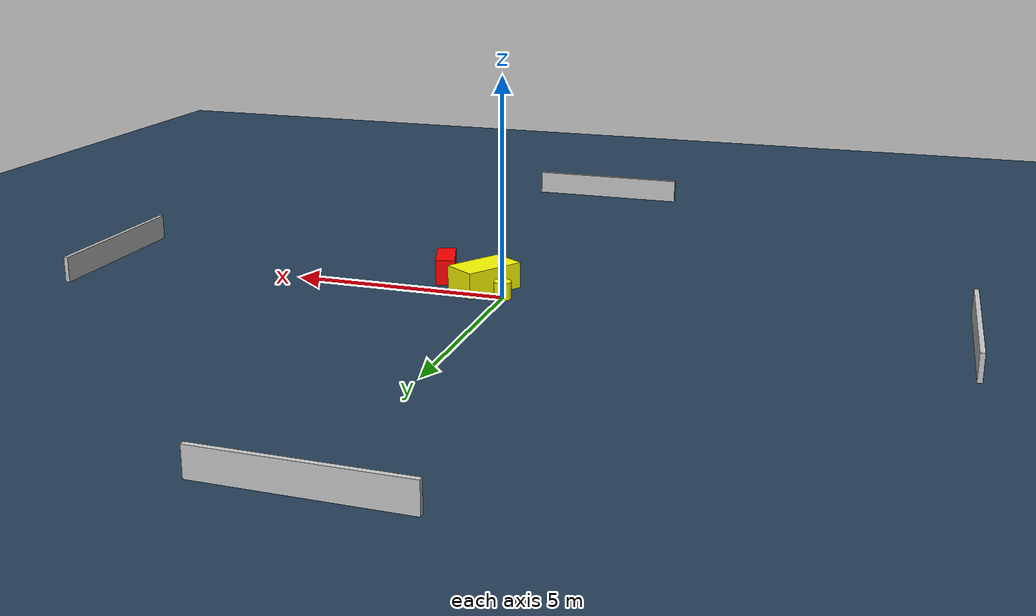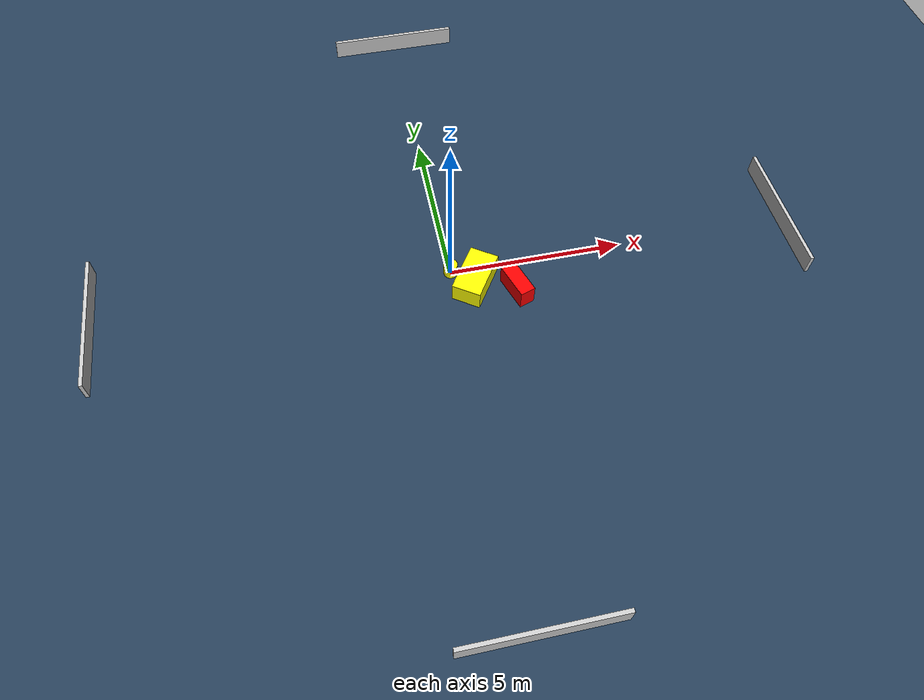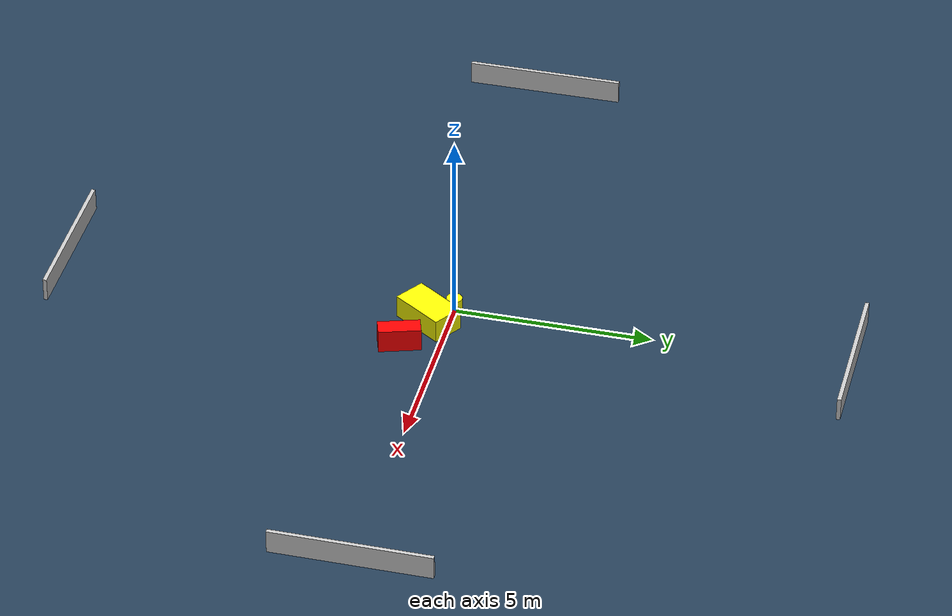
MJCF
<?xml version="1.0" ?>
<mujoco model="generated_environment">
  <option timestep="0.01" integrator="RK4" cone="elliptic"/>
  <default>
    <geom density="1"/>
  </default>
  <asset>
    <texture builtin="gradient" height="3072" name="skybox" rgb1="0.3 0.5 0.7" rgb2="0 0 0" type="skybox" width="512"/>
    <texture builtin="checker" height="300" name="groundplane" rgb1="0.2 0.3 0.4" rgb2="0.1 0.2 0.3" type="2d" width="300"/>
    <material name="groundplane" reflectance="0.2" texrepeat="5 5" texture="groundplane"/>
  </asset>
  <worldbody>
    <light dir="0 0 -1" directional="true" pos="0 0 1.5"/>
    <geom condim="3" friction="0.5 0.005 0.001" material="groundplane" name="floor" pos="0 0 0" size="0 0 0.05" type="plane"/>
    <body name="walls">
      <geom name="wall_1" condim="4" pos="-10.0 0.0 0.3" rgba="0.800000011920929 0.800000011920929 0.800000011920929 1.0" size="0.05 2.0 0.3" type="box"/>
      <geom name="wall_2" condim="4" pos="10.0 0.0 0.3" rgba="0.800000011920929 0.800000011920929 0.800000011920929 1.0" size="0.05 2.0 0.3" type="box"/>
      <geom name="wall_3" condim="4" pos="0.0 -10.0 0.3" rgba="0.800000011920929 0.800000011920929 0.800000011920929 1.0" size="2.0 0.05 0.3" type="box"/>
      <geom name="wall_4" condim="4" pos="0.0 10.0 0.3" rgba="0.800000011920929 0.800000011920929 0.800000011920929 1.0" size="2.0 0.05 0.3" type="box"/>
    </body>
    <body name="robot">
      <joint name="joint_x" type="slide" pos="0 0 0" axis="1 0 0"/>
      <joint name="joint_y" type="slide" pos="0 0 0" axis="0 1 0"/>
      <geom name="robot" type="cylinder" pos="0.0 0.0 0.2" size="0.2 0.2 0.0" mass="5.0" friction="1.0 0.005 0.0001" condim="4" rgba="1.0 1.0 0.0 1.0"/>
    </body>
    <body name="obstacle_1_movable">
      <geom name="obstacle_1_movable" condim="4" pos="0.6051544376570047 -0.5062775673399748 0.3" euler="0 0 236.27311569499616" friction="0.0 0.005 0.001" rgba="1.0 1.0 0.0 1.0" size="0.720945008403552 0.4157657516267733 0.3" type="box" mass="0.1"/>
      <joint type="free"/>
    </body>
    <body name="obstacle_2_static">
      <geom name="obstacle_2_static" condim="4" pos="1.705915474389531 -0.9745086489734314 0.3" euler="0 0 198.11475461478895" friction="0.0 0.005 0.001" rgba="1.0 0.0 0.0 1.0" size="0.22197008356930006 0.5306283683678851 0.3" type="box"/>
    </body>
  </worldbody>
  <actuator>
    <motor name="actuator_x" joint="joint_x" gear="1" ctrlrange="-1 1"/>
    <motor name="actuator_y" joint="joint_y" gear="1" ctrlrange="-1 1"/>
  </actuator>
</mujoco>
